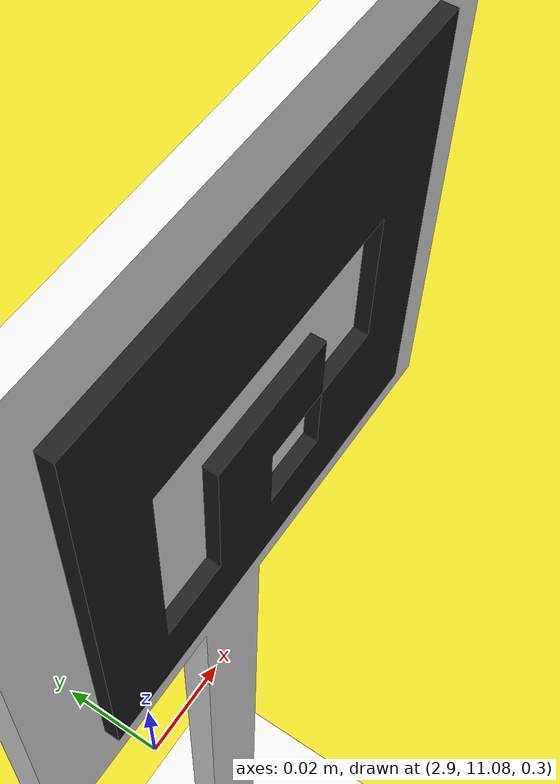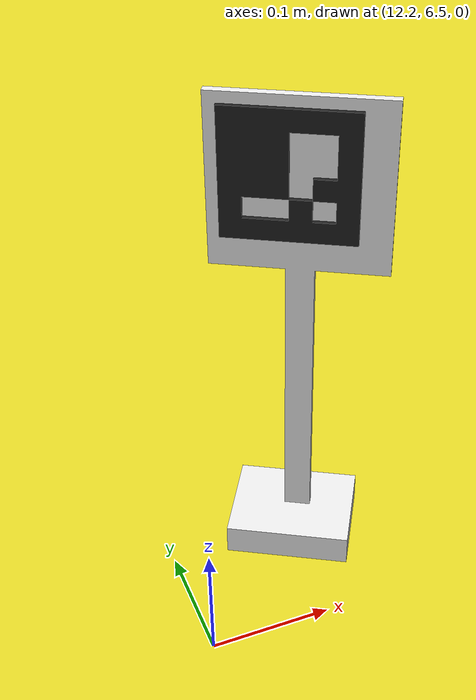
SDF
<sdf version="1.7">
 <world name="default">
  <light name="sun" type="directional">
   <pose>0 0 10 0 -0 0</pose>
   <diffuse>1 1 1 1</diffuse>
   <specular>0.2 0.2 0.2 1</specular>
   <attenuation>
    <range>1000</range>
    <constant>0.9</constant>
    <linear>0.01</linear>
    <quadratic>0.001</quadratic>
   </attenuation>
   <direction>-0.5 0.1 -0.9</direction>
   <spot><inner_angle>0</inner_angle><outer_angle>0</outer_angle><falloff>0</falloff></spot>
  </light>
  <model name="ground_plane">
   <static>1</static>
   <link name="link">
    <collision name="collision">
     <geometry><plane><normal>0 0 1</normal><size>100 100</size></plane></geometry>
     <surface>
      <contact><collide_bitmask>65535</collide_bitmask></contact>
      <friction><ode><mu>100</mu><mu2>50</mu2></ode></friction>
     </surface>
    </collision>
    <visual name="visual">
     <cast_shadows>0</cast_shadows>
     <geometry><plane><normal>0 0 1</normal><size>100 100</size></plane></geometry>
     <material>
      <script><uri>file://media/materials/scripts/gazebo.material</uri><name>Gazebo/DarkYellow</name></script>
     </material>
    </visual>
   </link>
  </model>
  <gravity>0 0 -9.8</gravity>
  <magnetic_field>6e-06 2.3e-05 -4.2e-05</magnetic_field>
  <atmosphere type="adiabatic"/>
  <physics type="ode">
   <max_step_size>0.001</max_step_size>
   <real_time_factor>1</real_time_factor>
   <real_time_update_rate>1000</real_time_update_rate>
  </physics>
  <scene><sky><clouds><speed>12</speed></clouds></sky></scene>
  <spherical_coordinates>
   <surface_model>EARTH_WGS84</surface_model>
   <latitude_deg>0</latitude_deg>
   <longitude_deg>0</longitude_deg>
   <elevation>0</elevation>
   <heading_deg>0</heading_deg>
  </spherical_coordinates>
  <model name="aruco0">
   <link name="link_0">
    <inertial>
     <mass>1</mass>
     <inertia>
      <ixx>0.166667</ixx>
      <ixy>0</ixy>
      <ixz>0</ixz>
      <iyy>0.166667</iyy>
      <iyz>0</iyz>
      <izz>0.166667</izz>
     </inertia>
    </inertial>
    <visual name="visual">
     <geometry>
      <mesh>
       <uri>/home/mustafa/MRM-URC2024-NavStack/src/robot/meshes/stand.stl</uri>
       <scale>0.007 0.007 0.007</scale>
      </mesh>
     </geometry>
     <material>
      <lighting>1</lighting>
      <script><uri>file://media/materials/scripts/gazebo.material</uri><name>Gazebo/White</name></script>
      <shader type="pixel"/>
     </material>
    </visual>
    <collision name="collision">
     <geometry>
      <mesh>
       <uri>/home/mustafa/MRM-URC2024-NavStack/src/robot/meshes/stand.stl</uri>
       <scale>0.007 0.007 0.007</scale>
      </mesh>
     </geometry>
     <surface>
      <friction>
       <ode><mu>1</mu><mu2>1</mu2><fdir1>0 0 0</fdir1><slip1>0</slip1><slip2>0</slip2></ode>
       <torsional>
        <coefficient>1</coefficient>
        <patch_radius>0</patch_radius>
        <surface_radius>0</surface_radius>
        <use_patch_radius>1</use_patch_radius>
        <ode><slip>0</slip></ode>
       </torsional>
      </friction>
      <bounce><restitution_coefficient>0</restitution_coefficient><threshold>1e+06</threshold></bounce>
      <contact>
       <collide_without_contact>0</collide_without_contact>
       <collide_without_contact_bitmask>1</collide_without_contact_bitmask>
       <collide_bitmask>1</collide_bitmask>
       <ode>
        <soft_cfm>0</soft_cfm>
        <soft_erp>0.2</soft_erp>
        <kp>1e+13</kp>
        <kd>1</kd>
        <max_vel>0.01</max_vel>
        <min_depth>0</min_depth>
       </ode>
       <bullet>
        <split_impulse>1</split_impulse>
        <split_impulse_penetration_threshold>-0.01</split_impulse_penetration_threshold>
        <soft_cfm>0</soft_cfm>
        <soft_erp>0.2</soft_erp>
        <kp>1e+13</kp>
        <kd>1</kd>
       </bullet>
      </contact>
     </surface>
    </collision>
   </link>
   <link name="link_1">
    <inertial>
     <mass>1</mass>
     <inertia>
      <ixx>0.166667</ixx>
      <ixy>0</ixy>
      <ixz>0</ixz>
      <iyy>0.166667</iyy>
      <iyz>0</iyz>
      <izz>0.166667</izz>
     </inertia>
    </inertial>
    <visual name="visual">
     <pose>-0.1 0.3 0.18 0 -0 3.14</pose>
     <geometry>
      <mesh>
       <uri>/home/mustafa/MRM-URC2024-NavStack/src/robot/meshes/aruco0.stl</uri>
       <scale>0.007 0.007 0.007</scale>
      </mesh>
     </geometry>
     <material>
      <lighting>1</lighting>
      <script><uri>file://media/materials/scripts/gazebo.material</uri><name>Gazebo/Black</name></script>
      <shader type="pixel"/>
     </material>
    </visual>
    <collision name="collision">
     <pose>-0.72 2.11 1.32 0 -0 3.14</pose>
     <geometry>
      <mesh>
       <uri>/home/mustafa/MRM-URC2024-NavStack/src/robot/meshes/aruco0.stl</uri>
       <scale>0.007 0.007 0.007</scale>
      </mesh>
     </geometry>
     <surface>
      <friction>
       <ode><mu>1</mu><mu2>1</mu2><fdir1>0 0 0</fdir1><slip1>0</slip1><slip2>0</slip2></ode>
       <torsional>
        <coefficient>1</coefficient>
        <patch_radius>0</patch_radius>
        <surface_radius>0</surface_radius>
        <use_patch_radius>1</use_patch_radius>
        <ode><slip>0</slip></ode>
       </torsional>
      </friction>
      <bounce><restitution_coefficient>0</restitution_coefficient><threshold>1e+06</threshold></bounce>
      <contact>
       <collide_without_contact>0</collide_without_contact>
       <collide_without_contact_bitmask>1</collide_without_contact_bitmask>
       <collide_bitmask>1</collide_bitmask>
       <ode>
        <soft_cfm>0</soft_cfm>
        <soft_erp>0.2</soft_erp>
        <kp>1e+13</kp>
        <kd>1</kd>
        <max_vel>0.01</max_vel>
        <min_depth>0</min_depth>
       </ode>
       <bullet>
        <split_impulse>1</split_impulse>
        <split_impulse_penetration_threshold>-0.01</split_impulse_penetration_threshold>
        <soft_cfm>0</soft_cfm>
        <soft_erp>0.2</soft_erp>
        <kp>1e+13</kp>
        <kd>1</kd>
       </bullet>
      </contact>
     </surface>
    </collision>
   </link>
   <static>1</static>
   <pose>-9.2002 11.0014 0 0 -0 0.711708</pose>
  </model>
  <model name="aruco1">
   <link name="link_0">
    <inertial>
     <mass>1</mass>
     <inertia>
      <ixx>0.166667</ixx>
      <ixy>0</ixy>
      <ixz>0</ixz>
      <iyy>0.166667</iyy>
      <iyz>0</iyz>
      <izz>0.166667</izz>
     </inertia>
    </inertial>
    <visual name="visual">
     <geometry>
      <mesh>
       <uri>/home/mustafa/MRM-URC2024-NavStack/src/robot/meshes/stand.stl</uri>
       <scale>0.007 0.007 0.007</scale>
      </mesh>
     </geometry>
     <material>
      <lighting>1</lighting>
      <script><uri>file://media/materials/scripts/gazebo.material</uri><name>Gazebo/White</name></script>
      <shader type="pixel"/>
     </material>
    </visual>
    <collision name="collision">
     <geometry>
      <mesh>
       <uri>/home/mustafa/MRM-URC2024-NavStack/src/robot/meshes/stand.stl</uri>
       <scale>0.007 0.007 0.007</scale>
      </mesh>
     </geometry>
     <surface>
      <friction>
       <ode><mu>1</mu><mu2>1</mu2><fdir1>0 0 0</fdir1><slip1>0</slip1><slip2>0</slip2></ode>
       <torsional>
        <coefficient>1</coefficient>
        <patch_radius>0</patch_radius>
        <surface_radius>0</surface_radius>
        <use_patch_radius>1</use_patch_radius>
        <ode><slip>0</slip></ode>
       </torsional>
      </friction>
      <bounce><restitution_coefficient>0</restitution_coefficient><threshold>1e+06</threshold></bounce>
      <contact>
       <collide_without_contact>0</collide_without_contact>
       <collide_without_contact_bitmask>1</collide_without_contact_bitmask>
       <collide_bitmask>1</collide_bitmask>
       <ode>
        <soft_cfm>0</soft_cfm>
        <soft_erp>0.2</soft_erp>
        <kp>1e+13</kp>
        <kd>1</kd>
        <max_vel>0.01</max_vel>
        <min_depth>0</min_depth>
       </ode>
       <bullet>
        <split_impulse>1</split_impulse>
        <split_impulse_penetration_threshold>-0.01</split_impulse_penetration_threshold>
        <soft_cfm>0</soft_cfm>
        <soft_erp>0.2</soft_erp>
        <kp>1e+13</kp>
        <kd>1</kd>
       </bullet>
      </contact>
     </surface>
    </collision>
   </link>
   <link name="link_1">
    <inertial>
     <mass>1</mass>
     <inertia>
      <ixx>0.166667</ixx>
      <ixy>0</ixy>
      <ixz>0</ixz>
      <iyy>0.166667</iyy>
      <iyz>0</iyz>
      <izz>0.166667</izz>
     </inertia>
    </inertial>
    <visual name="visual">
     <pose>-0.13 0.12 0.31 0 -0 0</pose>
     <geometry>
      <mesh>
       <uri>/home/mustafa/MRM-URC2024-NavStack/src/robot/meshes/aruco1.stl</uri>
       <scale>0.007 0.007 0.007</scale>
      </mesh>
     </geometry>
     <material>
      <lighting>1</lighting>
      <script><uri>file://media/materials/scripts/gazebo.material</uri><name>Gazebo/Black</name></script>
      <shader type="pixel"/>
     </material>
    </visual>
    <collision name="collision">
     <geometry>
      <mesh>
       <uri>/home/mustafa/MRM-URC2024-NavStack/src/robot/meshes/aruco1.stl</uri>
       <scale>0.007 0.007,0.007</scale>
      </mesh>
     </geometry>
     <surface>
      <friction>
       <ode><mu>1</mu><mu2>1</mu2><fdir1>0 0 0</fdir1><slip1>0</slip1><slip2>0</slip2></ode>
       <torsional>
        <coefficient>1</coefficient>
        <patch_radius>0</patch_radius>
        <surface_radius>0</surface_radius>
        <use_patch_radius>1</use_patch_radius>
        <ode><slip>0</slip></ode>
       </torsional>
      </friction>
      <bounce><restitution_coefficient>0</restitution_coefficient><threshold>1e+06</threshold></bounce>
      <contact>
       <collide_without_contact>0</collide_without_contact>
       <collide_without_contact_bitmask>1</collide_without_contact_bitmask>
       <collide_bitmask>1</collide_bitmask>
       <ode>
        <soft_cfm>0</soft_cfm>
        <soft_erp>0.2</soft_erp>
        <kp>1e+13</kp>
        <kd>1</kd>
        <max_vel>0.01</max_vel>
        <min_depth>0</min_depth>
       </ode>
       <bullet>
        <split_impulse>1</split_impulse>
        <split_impulse_penetration_threshold>-0.01</split_impulse_penetration_threshold>
        <soft_cfm>0</soft_cfm>
        <soft_erp>0.2</soft_erp>
        <kp>1e+13</kp>
        <kd>1</kd>
       </bullet>
      </contact>
     </surface>
    </collision>
   </link>
   <static>1</static>
   <pose>3.11278 11.0014 0 0 -0 0</pose>
  </model>
  <model name="aruco2">
   <link name="link_0">
    <inertial>
     <mass>1</mass>
     <inertia>
      <ixx>0.166667</ixx>
      <ixy>0</ixy>
      <ixz>0</ixz>
      <iyy>0.166667</iyy>
      <iyz>0</iyz>
      <izz>0.166667</izz>
     </inertia>
    </inertial>
    <visual name="visual">
     <geometry>
      <mesh>
       <uri>/home/mustafa/MRM-URC2024-NavStack/src/robot/meshes/stand.stl</uri>
       <scale>0.007 0.007 0.007</scale>
      </mesh>
     </geometry>
     <material>
      <lighting>1</lighting>
      <script><uri>file://media/materials/scripts/gazebo.material</uri><name>Gazebo/White</name></script>
      <shader type="pixel"/>
     </material>
    </visual>
    <collision name="collision">
     <geometry>
      <mesh>
       <uri>/home/mustafa/MRM-URC2024-NavStack/src/robot/meshes/stand.stl</uri>
       <scale>0.007 0.007 0.007</scale>
      </mesh>
     </geometry>
     <surface>
      <friction>
       <ode><mu>1</mu><mu2>1</mu2><fdir1>0 0 0</fdir1><slip1>0</slip1><slip2>0</slip2></ode>
       <torsional>
        <coefficient>1</coefficient>
        <patch_radius>0</patch_radius>
        <surface_radius>0</surface_radius>
        <use_patch_radius>1</use_patch_radius>
        <ode><slip>0</slip></ode>
       </torsional>
      </friction>
      <bounce><restitution_coefficient>0</restitution_coefficient><threshold>1e+06</threshold></bounce>
      <contact>
       <collide_without_contact>0</collide_without_contact>
       <collide_without_contact_bitmask>1</collide_without_contact_bitmask>
       <collide_bitmask>1</collide_bitmask>
       <ode>
        <soft_cfm>0</soft_cfm>
        <soft_erp>0.2</soft_erp>
        <kp>1e+13</kp>
        <kd>1</kd>
        <max_vel>0.01</max_vel>
        <min_depth>0</min_depth>
       </ode>
       <bullet>
        <split_impulse>1</split_impulse>
        <split_impulse_penetration_threshold>-0.01</split_impulse_penetration_threshold>
        <soft_cfm>0</soft_cfm>
        <soft_erp>0.2</soft_erp>
        <kp>1e+13</kp>
        <kd>1</kd>
       </bullet>
      </contact>
     </surface>
    </collision>
   </link>
   <link name="link_1">
    <inertial>
     <mass>1</mass>
     <inertia>
      <ixx>0.166667</ixx>
      <ixy>0</ixy>
      <ixz>0</ixz>
      <iyy>0.166667</iyy>
      <iyz>0</iyz>
      <izz>0.166667</izz>
     </inertia>
    </inertial>
    <visual name="visual">
     <pose>-0.2 0.12 0.35 0 -0 0</pose>
     <geometry>
      <mesh>
       <uri>/home/mustafa/MRM-URC2024-NavStack/src/robot/meshes/aruco2.stl</uri>
       <scale>0.007 0.007 0.007</scale>
      </mesh>
     </geometry>
     <material>
      <lighting>1</lighting>
      <script><uri>file://media/materials/scripts/gazebo.material</uri><name>Gazebo/Black</name></script>
      <shader type="pixel"/>
     </material>
    </visual>
    <collision name="collision">
     <pose>-1.375 0.85 2.45 0 -0 0</pose>
     <geometry>
      <mesh>
       <uri>/home/mustafa/MRM-URC2024-NavStack/src/robot/meshes/aruco2.stl</uri>
       <scale>0.007 0.007 0.007</scale>
      </mesh>
     </geometry>
     <surface>
      <friction>
       <ode><mu>1</mu><mu2>1</mu2><fdir1>0 0 0</fdir1><slip1>0</slip1><slip2>0</slip2></ode>
       <torsional>
        <coefficient>1</coefficient>
        <patch_radius>0</patch_radius>
        <surface_radius>0</surface_radius>
        <use_patch_radius>1</use_patch_radius>
        <ode><slip>0</slip></ode>
       </torsional>
      </friction>
      <bounce><restitution_coefficient>0</restitution_coefficient><threshold>1e+06</threshold></bounce>
      <contact>
       <collide_without_contact>0</collide_without_contact>
       <collide_without_contact_bitmask>1</collide_without_contact_bitmask>
       <collide_bitmask>1</collide_bitmask>
       <ode>
        <soft_cfm>0</soft_cfm>
        <soft_erp>0.2</soft_erp>
        <kp>1e+13</kp>
        <kd>1</kd>
        <max_vel>0.01</max_vel>
        <min_depth>0</min_depth>
       </ode>
       <bullet>
        <split_impulse>1</split_impulse>
        <split_impulse_penetration_threshold>-0.01</split_impulse_penetration_threshold>
        <soft_cfm>0</soft_cfm>
        <soft_erp>0.2</soft_erp>
        <kp>1e+13</kp>
        <kd>1</kd>
       </bullet>
      </contact>
     </surface>
    </collision>
   </link>
   <static>1</static>
   <pose>12.4067 6.43889 0 0 0 -0.525203</pose>
  </model>
 </world>
</sdf>
